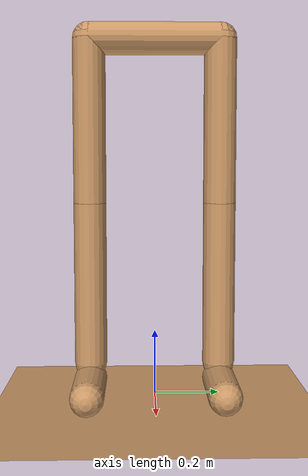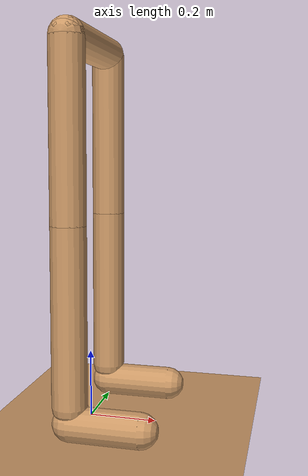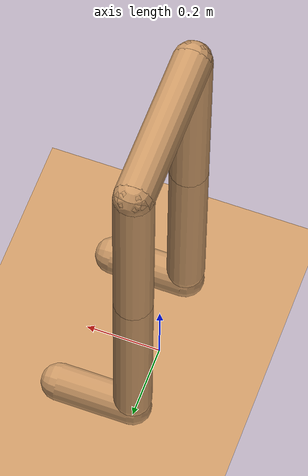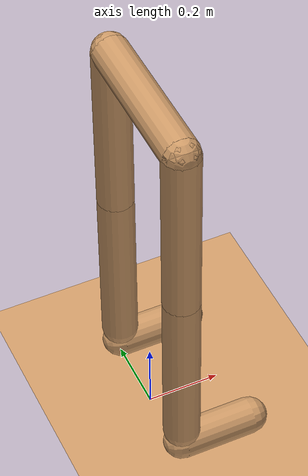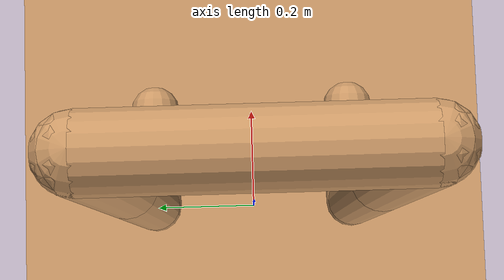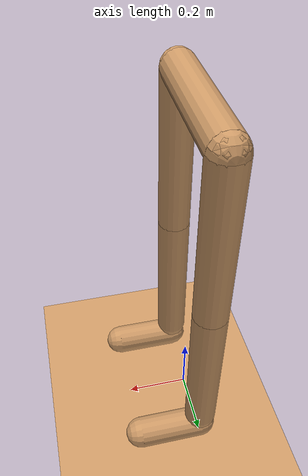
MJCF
<mujoco model='humanTest'>
    <compiler angle="degree" inertiafromgeom='auto'/>

	<default>
		<joint limited='true' damping='1' armature='1'/>
        <geom contype='3' conaffinity='1' condim='1' rgba='0.8 0.6 .4 1'
        	margin="0.001" solref=".02 1" solimp=".8 .8 .01" material="geom"/>
        <motor ctrlrange='-40 40' ctrllimited='true'/>
    </default>

    <option timestep='0.01' iterations="50" tolerance="1e-10" solver="Newton" jacobian="dense" cone="elliptic"/>

    <size nstack="1000000"/>

    <visual>
        <global offwidth="600" offheight="800"/>
    </visual>

	<asset>
		<texture type='skybox' builtin='gradient' width='100' height='100' rgb1='.4 .6 .8'
            rgb2='0 0 0'/>
        <texture name='texgeom' type='cube' builtin='flat' mark='cross' width='127' height='1278'
            rgb1='0.8 0.6 0.4' rgb2='0.8 0.6 0.4' markrgb='1 1 1'/>
        <texture name='texplane' type='2d' builtin='checker' rgb1='.2 .3 .4' rgb2='.1 0.15 0.2'
            width='100' height='100'/>
        <material name='MatPlane' reflectance='0' texture='texplane' texrepeat='1 1' texuniform='true'/>
        <material name='geom' texture='texgeom' texuniform='true'/>
    </asset>

    <worldbody>
		<geom name='floor' pos='0 0 0' size='5 5 0.125' type='plane' material='MatPlane' condim='3'/>
		<light mode = 'track' directional='true' diffuse='.8 .8 .8' specular='0.3 0.3 0.3' pos='0 0 2.0' dir='0 0 -1'/>

		<body name='pelvis'>
			<freejoint name='rootOnPelvis'/>
			<geom name='g_pelvis' type='capsule' fromto='0 -0.2 1.1 0 0.2 1.1' size='0.05'/>
		</body>

		<body name='Lfoot' pos='0 0.2 0.05'>
			<freejoint name='LrootOnFoot'/>
			<geom name='g_Lfoot' type='capsule' fromto='0 0 0 0.2 0 0' size='0.05'/>
			<body name = 'Lshank' pos='0 0 0.05'>
				<joint name="Lankle" type = 'hinge' axis = '0 1 0' range = '-100 100'/>
				<geom name='g_Lshank' type='capsule' fromto='0 0 0 0 0 0.5' size='0.05'/>
				<body name='Lthigh' pos='0 0 0.5'>
				<joint name="Lknee" type = 'hinge' pos='0 0 0' axis = '0 -1 0' range = '-5 150'/>
				<geom name='g_Lthigh' type='capsule' fromto = '0 0 0 0 0 0.5' size='0.05'/>
				</body>
			</body>
		</body>

		<body name='Rfoot' pos='0 -0.2 0.05'>
			<freejoint name='RrootOnFoot'/>
			<geom name='g_Rfoot' type='capsule' fromto='0 0 0 0.2 0 0' size='0.05'/>
			<body name = 'Rshank' pos='0 0 0.05'>
				<joint name="Rankle" type = 'hinge' axis = '0 1 0' range = '-100 100'/>
				<geom name='g_Rshank' type='capsule' fromto='0 0 0 0 0 0.5' size='0.05'/>
				<body name = 'Rthigh' pos='0 0 0.5'>
				<joint name="Rknee" type = 'hinge' pos='0 0 0' axis = '0 -1 0' range = '-5 150'/>
				<geom name='g_Rthigh' type='capsule' fromto = '0 0 0 0 0 0.5' size='0.05'/>
				</body>
			</body>
		</body>

	</worldbody>

	<equality>
	<connect name='Lhip1' body1='Lthigh' body2='pelvis' anchor='0 0.025 0.5'/>
	<connect name='Lhip2' body1='Lthigh' body2='pelvis' anchor='0 -0.025 0.5'/>
	<connect name='Rhip1' body1='Rthigh' body2='pelvis' anchor='0 0.025 0.5'/>
	<connect name='Rhip2' body1='Rthigh' body2='pelvis' anchor='0 -0.025 0.5'/>
	</equality>

</mujoco>
